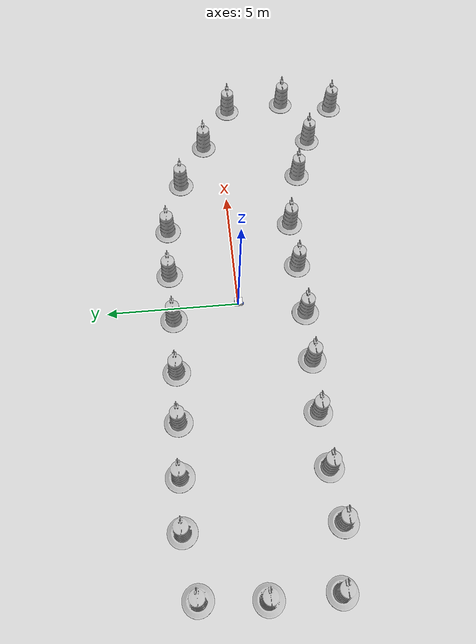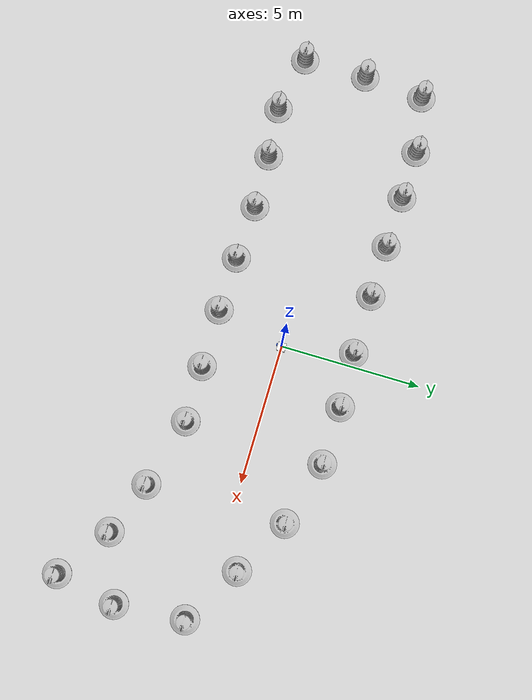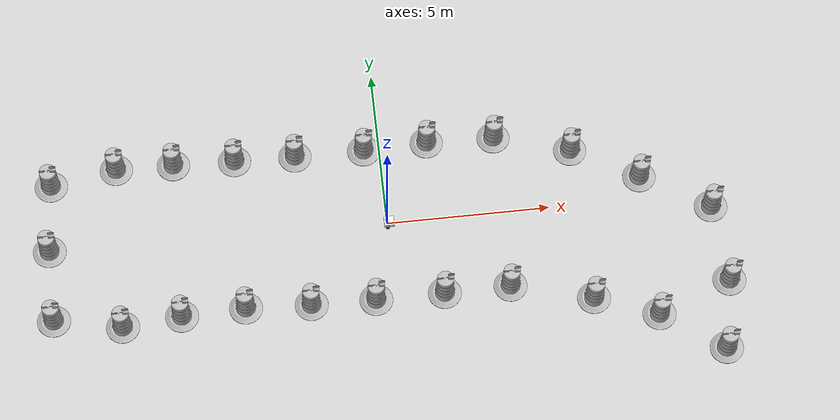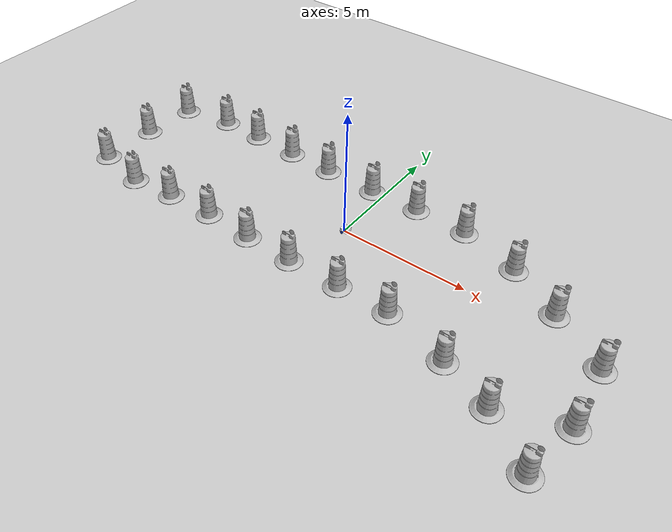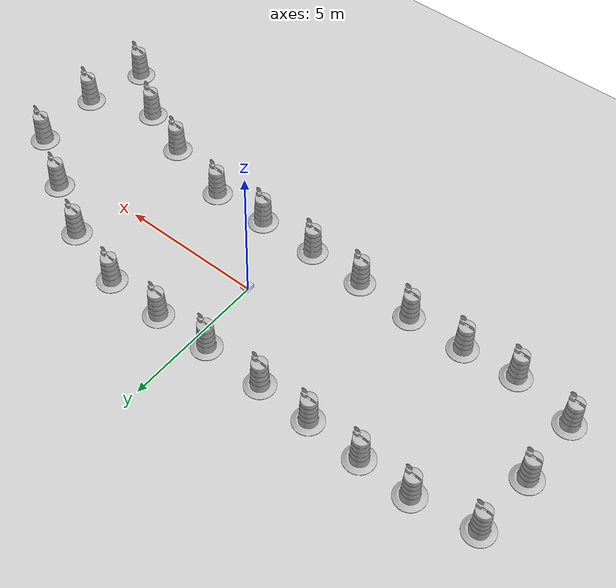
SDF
<sdf version="1.7">
 <world name="default">
  <light name="sun" type="directional">
   <pose>0 0 10 0 -0 0</pose>
   <diffuse>0.8 0.8 0.8 1</diffuse>
   <specular>0.2 0.2 0.2 1</specular>
   <attenuation>
    <range>1000</range>
    <constant>0.9</constant>
    <linear>0.01</linear>
    <quadratic>0.001</quadratic>
   </attenuation>
   <direction>-0.5 0.1 -0.9</direction>
   <spot><inner_angle>0</inner_angle><outer_angle>0</outer_angle><falloff>0</falloff></spot>
  </light>
  <model name="ground_plane">
   <static>1</static>
   <link name="link">
    <collision name="collision">
     <geometry><plane><normal>0 0 1</normal><size>100 100</size></plane></geometry>
     <surface><friction><ode><mu>100</mu><mu2>50</mu2></ode></friction></surface>
    </collision>
    <visual name="visual">
     <cast_shadows>0</cast_shadows>
     <geometry><plane><normal>0 0 1</normal><size>100 100</size></plane></geometry>
     <material>
      <script><uri>file://media/materials/scripts/gazebo.material</uri><name>Gazebo/Grey</name></script>
     </material>
    </visual>
   </link>
  </model>
  <gravity>0 0 -9.8</gravity>
  <magnetic_field>6e-06 2.3e-05 -4.2e-05</magnetic_field>
  <atmosphere type="adiabatic"/>
  <physics type="ode">
   <max_step_size>0.001</max_step_size>
   <real_time_factor>1</real_time_factor>
   <real_time_update_rate>1000</real_time_update_rate>
  </physics>
  <scene><ambient>0.4 0.4 0.4 1</ambient><background>0.7 0.7 0.7 1</background><shadows>1</shadows></scene>
  <audio><device>default</device></audio>
  <spherical_coordinates>
   <surface_model>EARTH_WGS84</surface_model>
   <latitude_deg>0</latitude_deg>
   <longitude_deg>0</longitude_deg>
   <elevation>0</elevation>
   <heading_deg>0</heading_deg>
  </spherical_coordinates>
  <model name="robot_dd">
   <link name="base_link">
    <inertial>
     <pose>0.055714 0 0.078571 0 -0 0</pose>
     <mass>0.7</mass>
     <inertia>
      <ixx>0.0064169</ixx>
      <ixy>0</ixy>
      <ixz>0.00118929</ixz>
      <iyy>0.00745405</iyy>
      <iyz>0</iyz>
      <izz>0.00876214</izz>
     </inertia>
    </inertial>
    <collision name="base_link_fixed_joint_lump__chassis_collision">
     <pose>0.05 0 0.075 0 -0 0</pose>
     <geometry><box><size>0.3 0.3 0.15</size></box></geometry>
    </collision>
    <collision name="base_link_fixed_joint_lump__caster_wheel_collision_1">
     <pose>0.14 0 0 0 -0 0</pose>
     <geometry><sphere><radius>0.05</radius></sphere></geometry>
     <surface><friction><ode><mu>0.001</mu><mu2>0.001</mu2></ode></friction></surface>
    </collision>
    <collision name="base_link_fixed_joint_lump__laser_frame_collision_2">
     <pose>0 0 0.175 0 -0 0</pose>
     <geometry><cylinder><length>0.04</length><radius>0.05</radius></cylinder></geometry>
    </collision>
    <visual name="base_link_fixed_joint_lump__chassis_visual">
     <pose>0.05 0 0.075 0 -0 0</pose>
     <geometry><box><size>0.3 0.3 0.15</size></box></geometry>
     <material>
      <script><name>Gazebo/White</name><uri>file://media/materials/scripts/gazebo.material</uri></script>
     </material>
    </visual>
    <visual name="base_link_fixed_joint_lump__caster_wheel_visual_1">
     <pose>0.14 0 0 0 -0 0</pose>
     <geometry><sphere><radius>0.05</radius></sphere></geometry>
     <material>
      <script><name>Gazebo/Black</name><uri>file://media/materials/scripts/gazebo.material</uri></script>
     </material>
    </visual>
    <visual name="base_link_fixed_joint_lump__laser_frame_visual_2">
     <pose>0 0 0.175 0 -0 0</pose>
     <geometry><cylinder><length>0.04</length><radius>0.05</radius></cylinder></geometry>
     <material>
      <script><name>Gazebo/Red</name><uri>file://media/materials/scripts/gazebo.material</uri></script>
     </material>
    </visual>
    <sensor name="laser" type="ray">
     <visualize>1</visualize>
     <update_rate>10</update_rate>
     <ray>
      <scan>
       <horizontal>
        <samples>360</samples>
        <min_angle>-3.14</min_angle>
        <max_angle>3.14</max_angle>
        <resolution>1</resolution>
       </horizontal>
       <vertical><samples>1</samples><min_angle>0</min_angle><max_angle>0</max_angle></vertical>
      </scan>
      <range><min>0.3</min><max>12</max></range>
     </ray>
     <plugin name="laser_controller" filename="libgazebo_ros_ray_sensor.so">
      <ros><argument>~/out:=scan</argument></ros>
      <output_type>sensor_msgs/LaserScan</output_type>
      <frame_name>laser_frame</frame_name>
     </plugin>
     <pose>0 0 0.175 0 -0 0</pose>
    </sensor>
   </link>
   <joint name="left_wheel_joint" type="revolute">
    <pose relative_to="base_link">0 0.175 0 -1.5708 0 0</pose>
    <parent>base_link</parent>
    <child>left_wheel</child>
    <axis>
     <xyz>0 0 1</xyz>
     <limit><lower>-1e+16</lower><upper>1e+16</upper></limit>
     <dynamics><spring_reference>0</spring_reference><spring_stiffness>0</spring_stiffness></dynamics>
    </axis>
   </joint>
   <link name="left_wheel">
    <pose relative_to="left_wheel_joint">0 0 0 0 -0 0</pose>
    <inertial>
     <mass>0.1</mass>
     <inertia>
      <ixx>7.58333e-05</ixx>
      <ixy>0</ixy>
      <ixz>0</ixz>
      <iyy>7.58333e-05</iyy>
      <iyz>0</iyz>
      <izz>0.000125</izz>
     </inertia>
    </inertial>
    <collision name="left_wheel_collision">
     <geometry><cylinder><length>0.04</length><radius>0.05</radius></cylinder></geometry>
    </collision>
    <visual name="left_wheel_visual">
     <geometry><cylinder><length>0.04</length><radius>0.05</radius></cylinder></geometry>
     <material>
      <script><name>Gazebo/Blue</name><uri>file://media/materials/scripts/gazebo.material</uri></script>
     </material>
    </visual>
   </link>
   <joint name="right_wheel_joint" type="revolute">
    <pose relative_to="base_link">0 -0.175 0 1.5708 -0 0</pose>
    <parent>base_link</parent>
    <child>right_wheel</child>
    <axis>
     <xyz>0 0 -1</xyz>
     <limit><lower>-1e+16</lower><upper>1e+16</upper></limit>
     <dynamics><spring_reference>0</spring_reference><spring_stiffness>0</spring_stiffness></dynamics>
    </axis>
   </joint>
   <link name="right_wheel">
    <pose relative_to="right_wheel_joint">0 0 0 0 -0 0</pose>
    <inertial>
     <mass>0.1</mass>
     <inertia>
      <ixx>7.58333e-05</ixx>
      <ixy>0</ixy>
      <ixz>0</ixz>
      <iyy>7.58333e-05</iyy>
      <iyz>0</iyz>
      <izz>0.000125</izz>
     </inertia>
    </inertial>
    <collision name="right_wheel_collision">
     <geometry><cylinder><length>0.04</length><radius>0.05</radius></cylinder></geometry>
    </collision>
    <visual name="right_wheel_visual">
     <geometry><cylinder><length>0.04</length><radius>0.05</radius></cylinder></geometry>
     <material>
      <script><name>Gazebo/Blue</name><uri>file://media/materials/scripts/gazebo.material</uri></script>
     </material>
    </visual>
   </link>
   <static>0</static>
   <plugin name="gazebo_ros2_control" filename="libgazebo_ros2_control.so">
    <parameters>/root/ws/install/robot_dd/share/robot_dd/config/my_controllers.yaml</parameters>
   </plugin>
   <pose>0.001283 1e-05 0.05 0 3.7e-05 0.000538</pose>
  </model>
  <model name="Construction Barrel">
   <link name="link">
    <inertial>
     <pose>0 0 0.4 0 -0 0</pose>
     <mass>500</mass>
     <inertia><ixx>51.2096</ixx><iyy>51.2096</iyy><izz>25</izz><ixy>0</ixy><ixz>0</ixz><iyz>0</iyz></inertia>
    </inertial>
    <collision name="collision">
     <geometry><mesh><uri>model://construction_barrel/meshes/construction_barrel.dae</uri></mesh></geometry>
    </collision>
    <visual name="visual">
     <geometry><mesh><uri>model://construction_barrel/meshes/construction_barrel.dae</uri></mesh></geometry>
    </visual>
   </link>
   <pose>-0.601686 -2.49211 -2e-06 0 7e-06 -3e-05</pose>
  </model>
  <model name="Construction Barrel_clone">
   <link name="link">
    <inertial>
     <pose>0 0 0.4 0 -0 0</pose>
     <mass>500</mass>
     <inertia><ixx>51.2096</ixx><iyy>51.2096</iyy><izz>25</izz><ixy>0</ixy><ixz>0</ixz><iyz>0</iyz></inertia>
    </inertial>
    <collision name="collision">
     <geometry><mesh><uri>model://construction_barrel/meshes/construction_barrel.dae</uri></mesh></geometry>
    </collision>
    <visual name="visual">
     <geometry><mesh><uri>model://construction_barrel/meshes/construction_barrel.dae</uri></mesh></geometry>
    </visual>
   </link>
   <pose>1.4937 -2.48304 -2e-06 -5e-06 -4e-06 -2.9e-05</pose>
  </model>
  <model name="Construction Barrel_clone_0">
   <link name="link">
    <inertial>
     <pose>0 0 0.4 0 -0 0</pose>
     <mass>500</mass>
     <inertia><ixx>51.2096</ixx><iyy>51.2096</iyy><izz>25</izz><ixy>0</ixy><ixz>0</ixz><iyz>0</iyz></inertia>
    </inertial>
    <collision name="collision">
     <geometry><mesh><uri>model://construction_barrel/meshes/construction_barrel.dae</uri></mesh></geometry>
    </collision>
    <visual name="visual">
     <geometry><mesh><uri>model://construction_barrel/meshes/construction_barrel.dae</uri></mesh></geometry>
    </visual>
   </link>
   <pose>-0.481311 2.49965 -2e-06 -5e-06 -4e-06 -2.8e-05</pose>
  </model>
  <model name="Construction Barrel_clone_1">
   <link name="link">
    <inertial>
     <pose>0 0 0.4 0 -0 0</pose>
     <mass>500</mass>
     <inertia><ixx>51.2096</ixx><iyy>51.2096</iyy><izz>25</izz><ixy>0</ixy><ixz>0</ixz><iyz>0</iyz></inertia>
    </inertial>
    <collision name="collision">
     <geometry><mesh><uri>model://construction_barrel/meshes/construction_barrel.dae</uri></mesh></geometry>
    </collision>
    <visual name="visual">
     <geometry><mesh><uri>model://construction_barrel/meshes/construction_barrel.dae</uri></mesh></geometry>
    </visual>
   </link>
   <pose>1.48383 2.56441 0 0 0 -2.7e-05</pose>
  </model>
  <model name="Construction Barrel_clone_2">
   <link name="link">
    <inertial>
     <pose>0 0 0.4 0 -0 0</pose>
     <mass>500</mass>
     <inertia><ixx>51.2096</ixx><iyy>51.2096</iyy><izz>25</izz><ixy>0</ixy><ixz>0</ixz><iyz>0</iyz></inertia>
    </inertial>
    <collision name="collision">
     <geometry><mesh><uri>model://construction_barrel/meshes/construction_barrel.dae</uri></mesh></geometry>
    </collision>
    <visual name="visual">
     <geometry><mesh><uri>model://construction_barrel/meshes/construction_barrel.dae</uri></mesh></geometry>
    </visual>
   </link>
   <pose>-2.62231 2.51692 -4e-06 -5e-06 -7e-06 -2.9e-05</pose>
  </model>
  <model name="Construction Barrel_clone_3">
   <link name="link">
    <inertial>
     <pose>0 0 0.4 0 -0 0</pose>
     <mass>500</mass>
     <inertia><ixx>51.2096</ixx><iyy>51.2096</iyy><izz>25</izz><ixy>0</ixy><ixz>0</ixz><iyz>0</iyz></inertia>
    </inertial>
    <collision name="collision">
     <geometry><mesh><uri>model://construction_barrel/meshes/construction_barrel.dae</uri></mesh></geometry>
    </collision>
    <visual name="visual">
     <geometry><mesh><uri>model://construction_barrel/meshes/construction_barrel.dae</uri></mesh></geometry>
    </visual>
   </link>
   <pose>-2.56863 -2.44764 -2e-06 7e-06 -4e-06 -2.5e-05</pose>
  </model>
  <model name="Construction Barrel_clone_4">
   <link name="link">
    <inertial>
     <pose>0 0 0.4 0 -0 0</pose>
     <mass>500</mass>
     <inertia><ixx>51.2096</ixx><iyy>51.2096</iyy><izz>25</izz><ixy>0</ixy><ixz>0</ixz><iyz>0</iyz></inertia>
    </inertial>
    <collision name="collision">
     <geometry><mesh><uri>model://construction_barrel/meshes/construction_barrel.dae</uri></mesh></geometry>
    </collision>
    <visual name="visual">
     <geometry><mesh><uri>model://construction_barrel/meshes/construction_barrel.dae</uri></mesh></geometry>
    </visual>
   </link>
   <pose>3.56824 2.51727 -1e-06 2e-06 -2e-06 -2.6e-05</pose>
  </model>
  <model name="Construction Barrel_clone_5">
   <link name="link">
    <inertial>
     <pose>0 0 0.4 0 -0 0</pose>
     <mass>500</mass>
     <inertia><ixx>51.2096</ixx><iyy>51.2096</iyy><izz>25</izz><ixy>0</ixy><ixz>0</ixz><iyz>0</iyz></inertia>
    </inertial>
    <collision name="collision">
     <geometry><mesh><uri>model://construction_barrel/meshes/construction_barrel.dae</uri></mesh></geometry>
    </collision>
    <visual name="visual">
     <geometry><mesh><uri>model://construction_barrel/meshes/construction_barrel.dae</uri></mesh></geometry>
    </visual>
   </link>
   <pose>3.50704 -2.4579 -0 0 -0 -2.6e-05</pose>
  </model>
  <model name="Construction Barrel_clone_6">
   <link name="link">
    <inertial>
     <pose>0 0 0.4 0 -0 0</pose>
     <mass>500</mass>
     <inertia><ixx>51.2096</ixx><iyy>51.2096</iyy><izz>25</izz><ixy>0</ixy><ixz>0</ixz><iyz>0</iyz></inertia>
    </inertial>
    <collision name="collision">
     <geometry><mesh><uri>model://construction_barrel/meshes/construction_barrel.dae</uri></mesh></geometry>
    </collision>
    <visual name="visual">
     <geometry><mesh><uri>model://construction_barrel/meshes/construction_barrel.dae</uri></mesh></geometry>
    </visual>
   </link>
   <pose>5.98246 -3.12142 -2e-06 -5e-06 -4e-06 -2.1e-05</pose>
  </model>
  <model name="Construction Barrel_clone_7">
   <link name="link">
    <inertial>
     <pose>0 0 0.4 0 -0 0</pose>
     <mass>500</mass>
     <inertia><ixx>51.2096</ixx><iyy>51.2096</iyy><izz>25</izz><ixy>0</ixy><ixz>0</ixz><iyz>0</iyz></inertia>
    </inertial>
    <collision name="collision">
     <geometry><mesh><uri>model://construction_barrel/meshes/construction_barrel.dae</uri></mesh></geometry>
    </collision>
    <visual name="visual">
     <geometry><mesh><uri>model://construction_barrel/meshes/construction_barrel.dae</uri></mesh></geometry>
    </visual>
   </link>
   <pose>5.88804 1.8445 0 0 0 -1.9e-05</pose>
  </model>
  <model name="Construction Barrel_clone_8">
   <link name="link">
    <inertial>
     <pose>0 0 0.4 0 -0 0</pose>
     <mass>500</mass>
     <inertia><ixx>51.2096</ixx><iyy>51.2096</iyy><izz>25</izz><ixy>0</ixy><ixz>0</ixz><iyz>0</iyz></inertia>
    </inertial>
    <collision name="collision">
     <geometry><mesh><uri>model://construction_barrel/meshes/construction_barrel.dae</uri></mesh></geometry>
    </collision>
    <visual name="visual">
     <geometry><mesh><uri>model://construction_barrel/meshes/construction_barrel.dae</uri></mesh></geometry>
    </visual>
   </link>
   <pose>7.90185 0.733398 -3e-06 -0 -1.2e-05 -2.5e-05</pose>
  </model>
  <model name="Construction Barrel_clone_9">
   <link name="link">
    <inertial>
     <pose>0 0 0.4 0 -0 0</pose>
     <mass>500</mass>
     <inertia><ixx>51.2096</ixx><iyy>51.2096</iyy><izz>25</izz><ixy>0</ixy><ixz>0</ixz><iyz>0</iyz></inertia>
    </inertial>
    <collision name="collision">
     <geometry><mesh><uri>model://construction_barrel/meshes/construction_barrel.dae</uri></mesh></geometry>
    </collision>
    <visual name="visual">
     <geometry><mesh><uri>model://construction_barrel/meshes/construction_barrel.dae</uri></mesh></geometry>
    </visual>
   </link>
   <pose>7.88677 -3.84818 -1e-06 2e-06 -1e-06 -2e-05</pose>
  </model>
  <model name="Construction Barrel_clone_10">
   <link name="link">
    <inertial>
     <pose>0 0 0.4 0 -0 0</pose>
     <mass>500</mass>
     <inertia><ixx>51.2096</ixx><iyy>51.2096</iyy><izz>25</izz><ixy>0</ixy><ixz>0</ixz><iyz>0</iyz></inertia>
    </inertial>
    <collision name="collision">
     <geometry><mesh><uri>model://construction_barrel/meshes/construction_barrel.dae</uri></mesh></geometry>
    </collision>
    <visual name="visual">
     <geometry><mesh><uri>model://construction_barrel/meshes/construction_barrel.dae</uri></mesh></geometry>
    </visual>
   </link>
   <pose>9.95704 -0.493718 -1e-06 2e-06 -2e-06 -1.9e-05</pose>
  </model>
  <model name="Construction Barrel_clone_11">
   <link name="link">
    <inertial>
     <pose>0 0 0.4 0 -0 0</pose>
     <mass>500</mass>
     <inertia><ixx>51.2096</ixx><iyy>51.2096</iyy><izz>25</izz><ixy>0</ixy><ixz>0</ixz><iyz>0</iyz></inertia>
    </inertial>
    <collision name="collision">
     <geometry><mesh><uri>model://construction_barrel/meshes/construction_barrel.dae</uri></mesh></geometry>
    </collision>
    <visual name="visual">
     <geometry><mesh><uri>model://construction_barrel/meshes/construction_barrel.dae</uri></mesh></geometry>
    </visual>
   </link>
   <pose>9.74637 -5.13992 -1e-06 4e-06 -1e-06 -1.6e-05</pose>
  </model>
  <model name="Construction Barrel_clone_12">
   <link name="link">
    <inertial>
     <pose>0 0 0.4 0 -0 0</pose>
     <mass>500</mass>
     <inertia><ixx>51.2096</ixx><iyy>51.2096</iyy><izz>25</izz><ixy>0</ixy><ixz>0</ixz><iyz>0</iyz></inertia>
    </inertial>
    <collision name="collision">
     <geometry><mesh><uri>model://construction_barrel/meshes/construction_barrel.dae</uri></mesh></geometry>
    </collision>
    <visual name="visual">
     <geometry><mesh><uri>model://construction_barrel/meshes/construction_barrel.dae</uri></mesh></geometry>
    </visual>
   </link>
   <pose>-4.49818 2.55766 -1e-06 3e-06 -2e-06 -1.9e-05</pose>
  </model>
  <model name="Construction Barrel_clone_13">
   <link name="link">
    <inertial>
     <pose>0 0 0.4 0 -0 0</pose>
     <mass>500</mass>
     <inertia><ixx>51.2096</ixx><iyy>51.2096</iyy><izz>25</izz><ixy>0</ixy><ixz>0</ixz><iyz>0</iyz></inertia>
    </inertial>
    <collision name="collision">
     <geometry><mesh><uri>model://construction_barrel/meshes/construction_barrel.dae</uri></mesh></geometry>
    </collision>
    <visual name="visual">
     <geometry><mesh><uri>model://construction_barrel/meshes/construction_barrel.dae</uri></mesh></geometry>
    </visual>
   </link>
   <pose>-6.39366 2.61712 1e-06 4e-06 3e-06 -1.8e-05</pose>
  </model>
  <model name="Construction Barrel_clone_14">
   <link name="link">
    <inertial>
     <pose>0 0 0.4 0 -0 0</pose>
     <mass>500</mass>
     <inertia><ixx>51.2096</ixx><iyy>51.2096</iyy><izz>25</izz><ixy>0</ixy><ixz>0</ixz><iyz>0</iyz></inertia>
    </inertial>
    <collision name="collision">
     <geometry><mesh><uri>model://construction_barrel/meshes/construction_barrel.dae</uri></mesh></geometry>
    </collision>
    <visual name="visual">
     <geometry><mesh><uri>model://construction_barrel/meshes/construction_barrel.dae</uri></mesh></geometry>
    </visual>
   </link>
   <pose>-4.55947 -2.35119 0 0 0 -1.2e-05</pose>
  </model>
  <model name="Construction Barrel_clone_15">
   <link name="link">
    <inertial>
     <pose>0 0 0.4 0 -0 0</pose>
     <mass>500</mass>
     <inertia><ixx>51.2096</ixx><iyy>51.2096</iyy><izz>25</izz><ixy>0</ixy><ixz>0</ixz><iyz>0</iyz></inertia>
    </inertial>
    <collision name="collision">
     <geometry><mesh><uri>model://construction_barrel/meshes/construction_barrel.dae</uri></mesh></geometry>
    </collision>
    <visual name="visual">
     <geometry><mesh><uri>model://construction_barrel/meshes/construction_barrel.dae</uri></mesh></geometry>
    </visual>
   </link>
   <pose>-6.50935 -2.41416 -1e-06 0 5e-06 -1e-05</pose>
  </model>
  <model name="Construction Barrel_clone_16">
   <link name="link">
    <inertial>
     <pose>0 0 0.4 0 -0 0</pose>
     <mass>500</mass>
     <inertia><ixx>51.2096</ixx><iyy>51.2096</iyy><izz>25</izz><ixy>0</ixy><ixz>0</ixz><iyz>0</iyz></inertia>
    </inertial>
    <collision name="collision">
     <geometry><mesh><uri>model://construction_barrel/meshes/construction_barrel.dae</uri></mesh></geometry>
    </collision>
    <visual name="visual">
     <geometry><mesh><uri>model://construction_barrel/meshes/construction_barrel.dae</uri></mesh></geometry>
    </visual>
   </link>
   <pose>-8.16525 2.64494 -2e-06 7e-06 -4e-06 -1.1e-05</pose>
  </model>
  <model name="Construction Barrel_clone_17">
   <link name="link">
    <inertial>
     <pose>0 0 0.4 0 -0 0</pose>
     <mass>500</mass>
     <inertia><ixx>51.2096</ixx><iyy>51.2096</iyy><izz>25</izz><ixy>0</ixy><ixz>0</ixz><iyz>0</iyz></inertia>
    </inertial>
    <collision name="collision">
     <geometry><mesh><uri>model://construction_barrel/meshes/construction_barrel.dae</uri></mesh></geometry>
    </collision>
    <visual name="visual">
     <geometry><mesh><uri>model://construction_barrel/meshes/construction_barrel.dae</uri></mesh></geometry>
    </visual>
   </link>
   <pose>-8.31133 -2.5787 -1e-06 2e-06 -1e-06 -6e-06</pose>
  </model>
  <model name="Construction Barrel_clone_18">
   <link name="link">
    <inertial>
     <pose>0 0 0.4 0 -0 0</pose>
     <mass>500</mass>
     <inertia><ixx>51.2096</ixx><iyy>51.2096</iyy><izz>25</izz><ixy>0</ixy><ixz>0</ixz><iyz>0</iyz></inertia>
    </inertial>
    <collision name="collision">
     <geometry><mesh><uri>model://construction_barrel/meshes/construction_barrel.dae</uri></mesh></geometry>
    </collision>
    <visual name="visual">
     <geometry><mesh><uri>model://construction_barrel/meshes/construction_barrel.dae</uri></mesh></geometry>
    </visual>
   </link>
   <pose>-10.2021 2.29343 -0 0 0 -8e-06</pose>
  </model>
  <model name="Construction Barrel_clone_19">
   <link name="link">
    <inertial>
     <pose>0 0 0.4 0 -0 0</pose>
     <mass>500</mass>
     <inertia><ixx>51.2096</ixx><iyy>51.2096</iyy><izz>25</izz><ixy>0</ixy><ixz>0</ixz><iyz>0</iyz></inertia>
    </inertial>
    <collision name="collision">
     <geometry><mesh><uri>model://construction_barrel/meshes/construction_barrel.dae</uri></mesh></geometry>
    </collision>
    <visual name="visual">
     <geometry><mesh><uri>model://construction_barrel/meshes/construction_barrel.dae</uri></mesh></geometry>
    </visual>
   </link>
   <pose>-10.3737 0.120963 -2e-06 -4e-06 7e-06 -8e-06</pose>
  </model>
  <model name="Construction Barrel_clone_20">
   <link name="link">
    <inertial>
     <pose>0 0 0.4 0 -0 0</pose>
     <mass>500</mass>
     <inertia><ixx>51.2096</ixx><iyy>51.2096</iyy><izz>25</izz><ixy>0</ixy><ixz>0</ixz><iyz>0</iyz></inertia>
    </inertial>
    <collision name="collision">
     <geometry><mesh><uri>model://construction_barrel/meshes/construction_barrel.dae</uri></mesh></geometry>
    </collision>
    <visual name="visual">
     <geometry><mesh><uri>model://construction_barrel/meshes/construction_barrel.dae</uri></mesh></geometry>
    </visual>
   </link>
   <pose>-10.3761 -2.16478 -1e-06 -3e-06 -1e-06 -6e-06</pose>
  </model>
  <model name="Construction Barrel_clone_21">
   <link name="link">
    <inertial>
     <pose>0 0 0.4 0 -0 0</pose>
     <mass>500</mass>
     <inertia><ixx>51.2096</ixx><iyy>51.2096</iyy><izz>25</izz><ixy>0</ixy><ixz>0</ixz><iyz>0</iyz></inertia>
    </inertial>
    <collision name="collision">
     <geometry><mesh><uri>model://construction_barrel/meshes/construction_barrel.dae</uri></mesh></geometry>
    </collision>
    <visual name="visual">
     <geometry><mesh><uri>model://construction_barrel/meshes/construction_barrel.dae</uri></mesh></geometry>
    </visual>
   </link>
   <pose>10.1614 -2.96406 -5e-06 -1.2e-05 -5e-06 -5e-06</pose>
  </model>
 </world>
</sdf>
